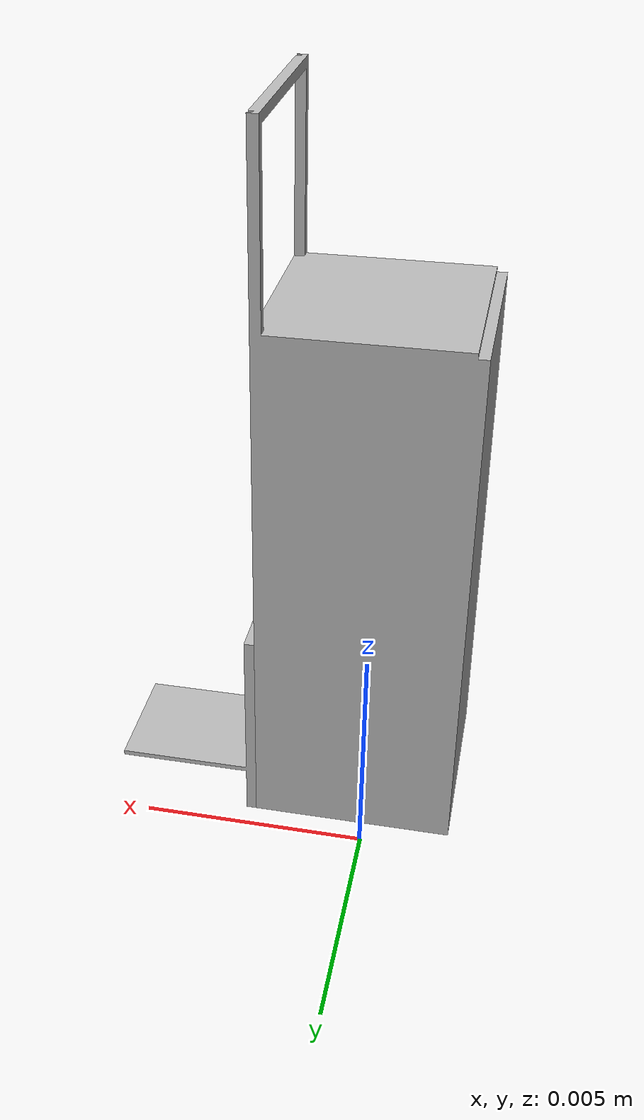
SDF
<?xml version="1.0" ?>
<sdf version="1.6">
	<model name="">
		<link name="base">
			<self_collide>false</self_collide>
			<pose>-0.0005020922922914383 1.1620809271468804e-06 0.007814014672644058 0.0 -0.0 0.0</pose>
			<inertial>
				<pose>0.0 0.0 0.0 0 0 0</pose>
				<mass>0.0002365361999999953</mass>
				<inertia>
					<ixx>3.198495039648163e-09</ixx>
					<ixy>-1.9446395815662267e-24</ixy>
					<ixz>-5.6232379876494516e-11</ixz>
					<iyy>3.0057265114177033e-09</iyy>
					<iyz>-7.321871910074381e-24</iyz>
					<izz>9.925574507695083e-10</izz>
				</inertia>
			</inertial>
			<collision name="base_collision">
				<geometry>
					<mesh>
						<uri>model:///meshes/CAD/base.stl</uri>
						<scale>0.001 0.001 0.001</scale>
					</mesh>
				</geometry>
			</collision>
			<visual name="base_visual">
				<geometry>
					<mesh>
						<uri>model:///meshes/CAD/base.stl</uri>
						<scale>0.001 0.001 0.001</scale>
					</mesh>
				</geometry>
			</visual>
		</link>
		<link name="lift">
			<self_collide>false</self_collide>
			<pose>0.0027848671566248957 1.1620809271647035e-06 0.0036150201010664677 0.0 -0.0 0.0</pose>
			<inertial>
				<pose>0.0 0.0 0.0 0 0 0</pose>
				<mass>1.1354686326192737e-05</mass>
				<inertia>
					<ixx>4.0341791058243344e-11</ixx>
					<ixy>2.2210833422814483e-25</ixy>
					<ixz>7.551079607402682e-12</ixz>
					<iyy>3.387863171968834e-11</iyy>
					<iyz>-8.245956731387995e-25</iyz>
					<izz>2.807750228668703e-11</izz>
				</inertia>
			</inertial>
			<collision name="lift_collision">
				<geometry>
					<mesh>
						<uri>model:///meshes/CAD/lift.stl</uri>
						<scale>0.001 0.001 0.001</scale>
					</mesh>
				</geometry>
			</collision>
			<visual name="lift_visual">
				<geometry>
					<mesh>
						<uri>model:///meshes/CAD/lift.stl</uri>
						<scale>0.001 0.001 0.001</scale>
					</mesh>
				</geometry>
			</visual>
		</link>
		<joint name="slide" type="prismatic">
			<parent>base</parent>
			<child>lift</child>
			<pose>-0.0009377824941838026 -0.001950000000000024 -0.0011800177741011543 0 0 0</pose>
			<axis>
				<xyz>2.6888213877640504e-17 5.551114025444996e-17 -1.0</xyz>
				<limit>
					<lower>0.0</lower>
					<upper>0.0</upper>
				</limit>
				<use_parent_model_frame>0</use_parent_model_frame>
			</axis>
		</joint>
	</model>
</sdf>
